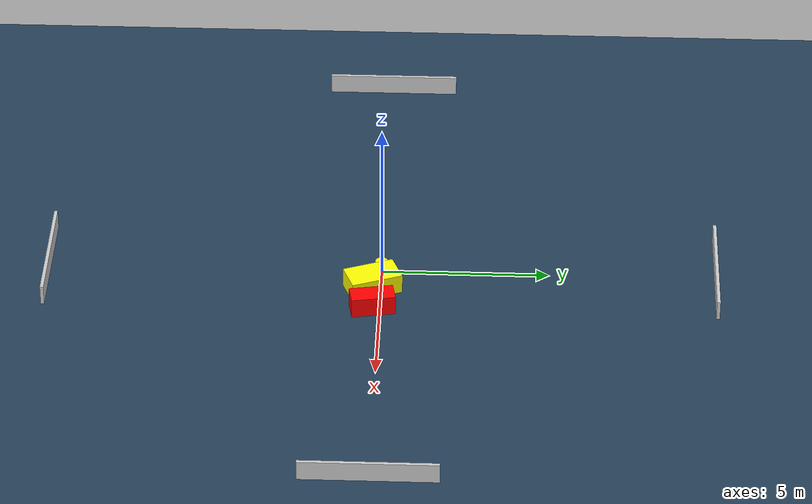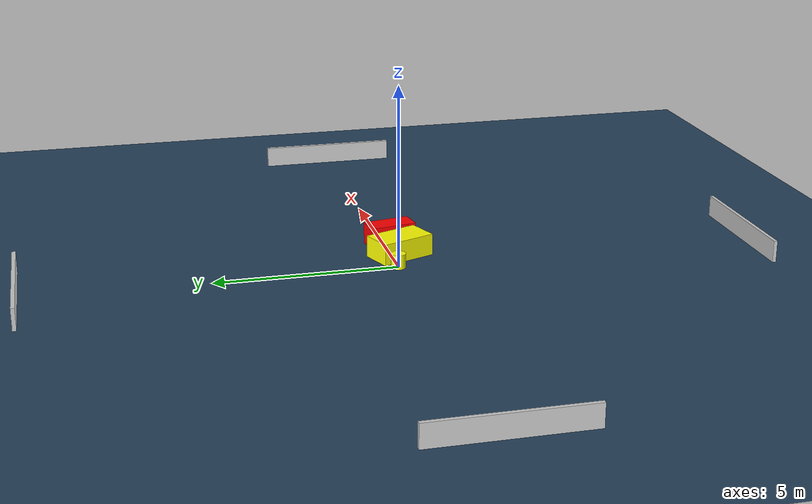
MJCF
<?xml version="1.0" ?>
<mujoco model="generated_environment">
  <option timestep="0.01" integrator="RK4" cone="elliptic"/>
  <default>
    <geom density="1"/>
  </default>
  <asset>
    <texture builtin="gradient" height="3072" name="skybox" rgb1="0.3 0.5 0.7" rgb2="0 0 0" type="skybox" width="512"/>
    <texture builtin="checker" height="300" name="groundplane" rgb1="0.2 0.3 0.4" rgb2="0.1 0.2 0.3" type="2d" width="300"/>
    <material name="groundplane" reflectance="0.2" texrepeat="5 5" texture="groundplane"/>
  </asset>
  <worldbody>
    <light dir="0 0 -1" directional="true" pos="0 0 1.5"/>
    <geom condim="3" friction="0.5 0.005 0.001" material="groundplane" name="floor" pos="0 0 0" size="0 0 0.05" type="plane"/>
    <body name="walls">
      <geom name="wall_1" condim="4" pos="-10.0 0.0 0.3" rgba="0.800000011920929 0.800000011920929 0.800000011920929 1.0" size="0.05 2.0 0.3" type="box"/>
      <geom name="wall_2" condim="4" pos="10.0 0.0 0.3" rgba="0.800000011920929 0.800000011920929 0.800000011920929 1.0" size="0.05 2.0 0.3" type="box"/>
      <geom name="wall_3" condim="4" pos="0.0 -10.0 0.3" rgba="0.800000011920929 0.800000011920929 0.800000011920929 1.0" size="2.0 0.05 0.3" type="box"/>
      <geom name="wall_4" condim="4" pos="0.0 10.0 0.3" rgba="0.800000011920929 0.800000011920929 0.800000011920929 1.0" size="2.0 0.05 0.3" type="box"/>
    </body>
    <body name="robot">
      <joint name="joint_x" type="slide" pos="0 0 0" axis="1 0 0"/>
      <joint name="joint_y" type="slide" pos="0 0 0" axis="0 1 0"/>
      <geom name="robot" type="cylinder" pos="0.0 0.0 0.2" size="0.2 0.2 0.0" mass="5.0" friction="1.0 0.005 0.0001" condim="4" rgba="1.0 1.0 0.0 1.0"/>
    </body>
    <body name="obstacle_1_movable">
      <geom name="obstacle_1_movable" condim="4" pos="0.8664797665834908 -0.24282974957932513 0.3" euler="0 0 201.2079518373809" friction="0.0 0.005 0.001" rgba="1.0 1.0 0.0 1.0" size="0.45160579252798017 0.7804339776292433 0.3" type="box" mass="0.1"/>
      <joint type="free"/>
    </body>
    <body name="obstacle_2_static">
      <geom name="obstacle_2_static" condim="4" pos="1.9149749015497868 -0.21243437932193873 0.3" euler="0 0 10.033453489732187" friction="0.0 0.005 0.001" rgba="1.0 0.0 0.0 1.0" size="0.31335263274342867 0.654289685285786 0.3" type="box"/>
    </body>
  </worldbody>
  <actuator>
    <motor name="actuator_x" joint="joint_x" gear="1" ctrlrange="-1 1"/>
    <motor name="actuator_y" joint="joint_y" gear="1" ctrlrange="-1 1"/>
  </actuator>
</mujoco>
